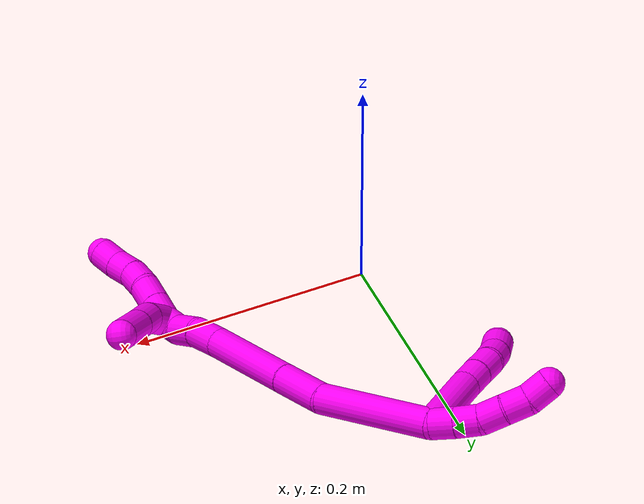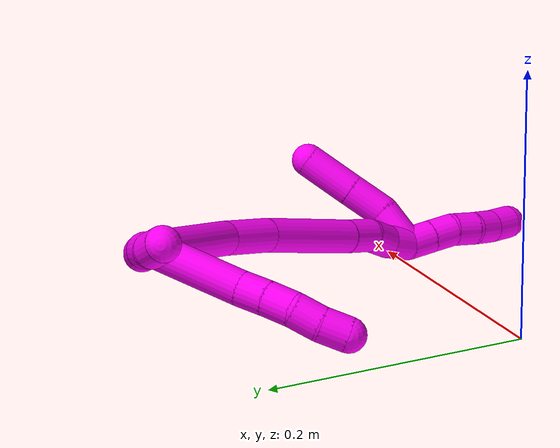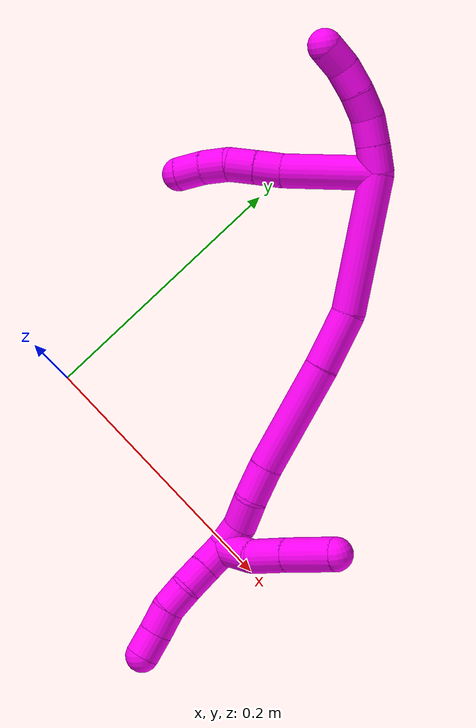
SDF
<sdf version="1.7">
 <world name="default">
  <model name="10">
   <static>0</static>
   <link name="10">
    <collision name="collision-cylinder-e_1_2_8">
     <pose>0.008841 -0.032764 0.005931 1.39172 0.259524 0.217132</pose>
     <geometry><cylinder><radius>0.0125</radius><length>0.068901</length></cylinder></geometry>
     <surface>
      <friction><ode><mu>1.16</mu><mu2>1.16</mu2><slip1>0</slip1><slip2>0</slip2></ode></friction>
      <contact><ode><kp>1e+06</kp><kd>1</kd><max_vel>0</max_vel><min_depth>0.001</min_depth></ode></contact>
     </surface>
    </collision>
    <visual name="visual-cylinder-e_1_2_8">
     <pose>0.008841 -0.032764 0.005931 1.39172 0.259524 0.217132</pose>
     <geometry><cylinder><radius>0.0125</radius><length>0.068901</length></cylinder></geometry>
     <material><ambient>1 0 0.964706 1</ambient></material>
    </visual>
    <collision name="collision-cylinder-e_2_8_9">
     <pose>0.020774 -0.07469 0.014665 1.27379 0.31221 0.231801</pose>
     <geometry><cylinder><radius>0.0125</radius><length>0.020135</length></cylinder></geometry>
     <surface>
      <friction><ode><mu>1.16</mu><mu2>1.16</mu2><slip1>0</slip1><slip2>0</slip2></ode></friction>
      <contact><ode><kp>1e+06</kp><kd>1</kd><max_vel>0</max_vel><min_depth>0.001</min_depth></ode></contact>
     </surface>
    </collision>
    <visual name="visual-cylinder-e_2_8_9">
     <pose>0.020774 -0.07469 0.014665 1.27379 0.31221 0.231801</pose>
     <geometry><cylinder><radius>0.0125</radius><length>0.020135</length></cylinder></geometry>
     <material><ambient>1 0 0.964706 1</ambient></material>
    </visual>
    <collision name="collision-cylinder-e_3_9_10">
     <pose>0.026668 -0.093406 0.020157 1.29662 0.275082 0.208946</pose>
     <geometry><cylinder><radius>0.0125</radius><length>0.020628</length></cylinder></geometry>
     <surface>
      <friction><ode><mu>1.16</mu><mu2>1.16</mu2><slip1>0</slip1><slip2>0</slip2></ode></friction>
      <contact><ode><kp>1e+06</kp><kd>1</kd><max_vel>0</max_vel><min_depth>0.001</min_depth></ode></contact>
     </surface>
    </collision>
    <visual name="visual-cylinder-e_3_9_10">
     <pose>0.026668 -0.093406 0.020157 1.29662 0.275082 0.208946</pose>
     <geometry><cylinder><radius>0.0125</radius><length>0.020628</length></cylinder></geometry>
     <material><ambient>1 0 0.964706 1</ambient></material>
    </visual>
    <collision name="collision-cylinder-e_4_10_11">
     <pose>0.031209 -0.112915 0.023067 1.54846 0.173062 0.169258</pose>
     <geometry><cylinder><radius>0.0125</radius><length>0.020212</length></cylinder></geometry>
     <surface>
      <friction><ode><mu>1.16</mu><mu2>1.16</mu2><slip1>0</slip1><slip2>0</slip2></ode></friction>
      <contact><ode><kp>1e+06</kp><kd>1</kd><max_vel>0</max_vel><min_depth>0.001</min_depth></ode></contact>
     </surface>
    </collision>
    <visual name="visual-cylinder-e_4_10_11">
     <pose>0.031209 -0.112915 0.023067 1.54846 0.173062 0.169258</pose>
     <geometry><cylinder><radius>0.0125</radius><length>0.020212</length></cylinder></geometry>
     <material><ambient>1 0 0.964706 1</ambient></material>
    </visual>
    <collision name="collision-cylinder-e_5_11_6">
     <pose>0.035822 -0.132464 0.022345 1.66888 0.289524 0.318931</pose>
     <geometry><cylinder><radius>0.0125</radius><length>0.020124</length></cylinder></geometry>
     <surface>
      <friction><ode><mu>1.16</mu><mu2>1.16</mu2><slip1>0</slip1><slip2>0</slip2></ode></friction>
      <contact><ode><kp>1e+06</kp><kd>1</kd><max_vel>0</max_vel><min_depth>0.001</min_depth></ode></contact>
     </surface>
    </collision>
    <visual name="visual-cylinder-e_5_11_6">
     <pose>0.035822 -0.132464 0.022345 1.66888 0.289524 0.318931</pose>
     <geometry><cylinder><radius>0.0125</radius><length>0.020124</length></cylinder></geometry>
     <material><ambient>1 0 0.964706 1</ambient></material>
    </visual>
    <collision name="collision-cylinder-e_1_2_12">
     <pose>-0.000716 -6.9e-05 0.009974 0.006872 -0.071629 -0.000246</pose>
     <geometry><cylinder><radius>0.0125</radius><length>0.02</length></cylinder></geometry>
     <surface>
      <friction><ode><mu>1.16</mu><mu2>1.16</mu2><slip1>0</slip1><slip2>0</slip2></ode></friction>
      <contact><ode><kp>1e+06</kp><kd>1</kd><max_vel>0</max_vel><min_depth>0.001</min_depth></ode></contact>
     </surface>
    </collision>
    <visual name="visual-cylinder-e_1_2_12">
     <pose>-0.000716 -6.9e-05 0.009974 0.006872 -0.071629 -0.000246</pose>
     <geometry><cylinder><radius>0.0125</radius><length>0.02</length></cylinder></geometry>
     <material><ambient>1 0 0.964706 1</ambient></material>
    </visual>
    <collision name="collision-cylinder-e_2_12_13">
     <pose>-0.001549 -0.000333 0.029946 0.019555 -0.011761 -0.000115</pose>
     <geometry><cylinder><radius>0.0125</radius><length>0.02</length></cylinder></geometry>
     <surface>
      <friction><ode><mu>1.16</mu><mu2>1.16</mu2><slip1>0</slip1><slip2>0</slip2></ode></friction>
      <contact><ode><kp>1e+06</kp><kd>1</kd><max_vel>0</max_vel><min_depth>0.001</min_depth></ode></contact>
     </surface>
    </collision>
    <visual name="visual-cylinder-e_2_12_13">
     <pose>-0.001549 -0.000333 0.029946 0.019555 -0.011761 -0.000115</pose>
     <geometry><cylinder><radius>0.0125</radius><length>0.02</length></cylinder></geometry>
     <material><ambient>1 0 0.964706 1</ambient></material>
    </visual>
    <collision name="collision-cylinder-e_3_13_14">
     <pose>0.000848 -0.001647 0.049557 0.115821 0.254136 0.014813</pose>
     <geometry><cylinder><radius>0.0125</radius><length>0.02</length></cylinder></geometry>
     <surface>
      <friction><ode><mu>1.16</mu><mu2>1.16</mu2><slip1>0</slip1><slip2>0</slip2></ode></friction>
      <contact><ode><kp>1e+06</kp><kd>1</kd><max_vel>0</max_vel><min_depth>0.001</min_depth></ode></contact>
     </surface>
    </collision>
    <visual name="visual-cylinder-e_3_13_14">
     <pose>0.000848 -0.001647 0.049557 0.115821 0.254136 0.014813</pose>
     <geometry><cylinder><radius>0.0125</radius><length>0.02</length></cylinder></geometry>
     <material><ambient>1 0 0.964706 1</ambient></material>
    </visual>
    <collision name="collision-cylinder-e_4_14_15">
     <pose>0.005727 -0.005248 0.068565 0.258358 0.238802 0.031167</pose>
     <geometry><cylinder><radius>0.0125</radius><length>0.02</length></cylinder></geometry>
     <surface>
      <friction><ode><mu>1.16</mu><mu2>1.16</mu2><slip1>0</slip1><slip2>0</slip2></ode></friction>
      <contact><ode><kp>1e+06</kp><kd>1</kd><max_vel>0</max_vel><min_depth>0.001</min_depth></ode></contact>
     </surface>
    </collision>
    <visual name="visual-cylinder-e_4_14_15">
     <pose>0.005727 -0.005248 0.068565 0.258358 0.238802 0.031167</pose>
     <geometry><cylinder><radius>0.0125</radius><length>0.02</length></cylinder></geometry>
     <material><ambient>1 0 0.964706 1</ambient></material>
    </visual>
    <collision name="collision-cylinder-e_5_15_5">
     <pose>0.012997 -0.010253 0.0863 0.293691 0.512593 0.077484</pose>
     <geometry><cylinder><radius>0.0125</radius><length>0.02</length></cylinder></geometry>
     <surface>
      <friction><ode><mu>1.16</mu><mu2>1.16</mu2><slip1>0</slip1><slip2>0</slip2></ode></friction>
      <contact><ode><kp>1e+06</kp><kd>1</kd><max_vel>0</max_vel><min_depth>0.001</min_depth></ode></contact>
     </surface>
    </collision>
    <visual name="visual-cylinder-e_5_15_5">
     <pose>0.012997 -0.010253 0.0863 0.293691 0.512593 0.077484</pose>
     <geometry><cylinder><radius>0.0125</radius><length>0.02</length></cylinder></geometry>
     <material><ambient>1 0 0.964706 1</ambient></material>
    </visual>
    <collision name="collision-cylinder-e_1_2_16">
     <pose>0.013548 -0.013927 -0.046999 2.85352 0.269644 1.50387</pose>
     <geometry><cylinder><radius>0.0125</radius><length>0.101713</length></cylinder></geometry>
     <surface>
      <friction><ode><mu>1.16</mu><mu2>1.16</mu2><slip1>0</slip1><slip2>0</slip2></ode></friction>
      <contact><ode><kp>1e+06</kp><kd>1</kd><max_vel>0</max_vel><min_depth>0.001</min_depth></ode></contact>
     </surface>
    </collision>
    <visual name="visual-cylinder-e_1_2_16">
     <pose>0.013548 -0.013927 -0.046999 2.85352 0.269644 1.50387</pose>
     <geometry><cylinder><radius>0.0125</radius><length>0.101713</length></cylinder></geometry>
     <material><ambient>1 0 0.964706 1</ambient></material>
    </visual>
    <collision name="collision-cylinder-e_2_16_17">
     <pose>0.035578 -0.037812 -0.111196 2.61672 0.403445 1.30136</pose>
     <geometry><cylinder><radius>0.0125</radius><length>0.043217</length></cylinder></geometry>
     <surface>
      <friction><ode><mu>1.16</mu><mu2>1.16</mu2><slip1>0</slip1><slip2>0</slip2></ode></friction>
      <contact><ode><kp>1e+06</kp><kd>1</kd><max_vel>0</max_vel><min_depth>0.001</min_depth></ode></contact>
     </surface>
    </collision>
    <visual name="visual-cylinder-e_2_16_17">
     <pose>0.035578 -0.037812 -0.111196 2.61672 0.403445 1.30136</pose>
     <geometry><cylinder><radius>0.0125</radius><length>0.043217</length></cylinder></geometry>
     <material><ambient>1 0 0.964706 1</ambient></material>
    </visual>
    <collision name="collision-cylinder-e_3_17_18">
     <pose>0.059223 -0.069535 -0.160708 2.54885 0.371122 1.10237</pose>
     <geometry><cylinder><radius>0.0125</radius><length>0.08361</length></cylinder></geometry>
     <surface>
      <friction><ode><mu>1.16</mu><mu2>1.16</mu2><slip1>0</slip1><slip2>0</slip2></ode></friction>
      <contact><ode><kp>1e+06</kp><kd>1</kd><max_vel>0</max_vel><min_depth>0.001</min_depth></ode></contact>
     </surface>
    </collision>
    <visual name="visual-cylinder-e_3_17_18">
     <pose>0.059223 -0.069535 -0.160708 2.54885 0.371122 1.10237</pose>
     <geometry><cylinder><radius>0.0125</radius><length>0.08361</length></cylinder></geometry>
     <material><ambient>1 0 0.964706 1</ambient></material>
    </visual>
    <collision name="collision-cylinder-e_4_18_19">
     <pose>0.079286 -0.097397 -0.203799 2.62675 0.376943 1.25397</pose>
     <geometry><cylinder><radius>0.0125</radius><length>0.026637</length></cylinder></geometry>
     <surface>
      <friction><ode><mu>1.16</mu><mu2>1.16</mu2><slip1>0</slip1><slip2>0</slip2></ode></friction>
      <contact><ode><kp>1e+06</kp><kd>1</kd><max_vel>0</max_vel><min_depth>0.001</min_depth></ode></contact>
     </surface>
    </collision>
    <visual name="visual-cylinder-e_4_18_19">
     <pose>0.079286 -0.097397 -0.203799 2.62675 0.376943 1.25397</pose>
     <geometry><cylinder><radius>0.0125</radius><length>0.026637</length></cylinder></geometry>
     <material><ambient>1 0 0.964706 1</ambient></material>
    </visual>
    <collision name="collision-cylinder-e_5_19_20">
     <pose>0.085626 -0.109655 -0.224546 2.58807 0.122045 0.423742</pose>
     <geometry><cylinder><radius>0.0125</radius><length>0.023613</length></cylinder></geometry>
     <surface>
      <friction><ode><mu>1.16</mu><mu2>1.16</mu2><slip1>0</slip1><slip2>0</slip2></ode></friction>
      <contact><ode><kp>1e+06</kp><kd>1</kd><max_vel>0</max_vel><min_depth>0.001</min_depth></ode></contact>
     </surface>
    </collision>
    <visual name="visual-cylinder-e_5_19_20">
     <pose>0.085626 -0.109655 -0.224546 2.58807 0.122045 0.423742</pose>
     <geometry><cylinder><radius>0.0125</radius><length>0.023613</length></cylinder></geometry>
     <material><ambient>1 0 0.964706 1</ambient></material>
    </visual>
    <collision name="collision-cylinder-e_6_20_1">
     <pose>0.090748 -0.122418 -0.24195 2.4154 0.354849 0.881898</pose>
     <geometry><cylinder><radius>0.0125</radius><length>0.021209</length></cylinder></geometry>
     <surface>
      <friction><ode><mu>1.16</mu><mu2>1.16</mu2><slip1>0</slip1><slip2>0</slip2></ode></friction>
      <contact><ode><kp>1e+06</kp><kd>1</kd><max_vel>0</max_vel><min_depth>0.001</min_depth></ode></contact>
     </surface>
    </collision>
    <visual name="visual-cylinder-e_6_20_1">
     <pose>0.090748 -0.122418 -0.24195 2.4154 0.354849 0.881898</pose>
     <geometry><cylinder><radius>0.0125</radius><length>0.021209</length></cylinder></geometry>
     <material><ambient>1 0 0.964706 1</ambient></material>
    </visual>
    <collision name="collision-cylinder-e_1_1_21">
     <pose>0.101528 -0.133956 -0.254416 2.36581 0.788818 1.58929</pose>
     <geometry><cylinder><radius>0.0125</radius><length>0.02</length></cylinder></geometry>
     <surface>
      <friction><ode><mu>1.16</mu><mu2>1.16</mu2><slip1>0</slip1><slip2>0</slip2></ode></friction>
      <contact><ode><kp>1e+06</kp><kd>1</kd><max_vel>0</max_vel><min_depth>0.001</min_depth></ode></contact>
     </surface>
    </collision>
    <visual name="visual-cylinder-e_1_1_21">
     <pose>0.101528 -0.133956 -0.254416 2.36581 0.788818 1.58929</pose>
     <geometry><cylinder><radius>0.0125</radius><length>0.02</length></cylinder></geometry>
     <material><ambient>1 0 0.964706 1</ambient></material>
    </visual>
    <collision name="collision-cylinder-e_2_21_22">
     <pose>0.11565 -0.143845 -0.264552 2.3712 0.779214 1.58341</pose>
     <geometry><cylinder><radius>0.0125</radius><length>0.02</length></cylinder></geometry>
     <surface>
      <friction><ode><mu>1.16</mu><mu2>1.16</mu2><slip1>0</slip1><slip2>0</slip2></ode></friction>
      <contact><ode><kp>1e+06</kp><kd>1</kd><max_vel>0</max_vel><min_depth>0.001</min_depth></ode></contact>
     </surface>
    </collision>
    <visual name="visual-cylinder-e_2_21_22">
     <pose>0.11565 -0.143845 -0.264552 2.3712 0.779214 1.58341</pose>
     <geometry><cylinder><radius>0.0125</radius><length>0.02</length></cylinder></geometry>
     <material><ambient>1 0 0.964706 1</ambient></material>
    </visual>
    <collision name="collision-cylinder-e_3_22_23">
     <pose>0.127795 -0.154803 -0.275805 2.36802 0.537239 1.18865</pose>
     <geometry><cylinder><radius>0.0125</radius><length>0.02</length></cylinder></geometry>
     <surface>
      <friction><ode><mu>1.16</mu><mu2>1.16</mu2><slip1>0</slip1><slip2>0</slip2></ode></friction>
      <contact><ode><kp>1e+06</kp><kd>1</kd><max_vel>0</max_vel><min_depth>0.001</min_depth></ode></contact>
     </surface>
    </collision>
    <visual name="visual-cylinder-e_3_22_23">
     <pose>0.127795 -0.154803 -0.275805 2.36802 0.537239 1.18865</pose>
     <geometry><cylinder><radius>0.0125</radius><length>0.02</length></cylinder></geometry>
     <material><ambient>1 0 0.964706 1</ambient></material>
    </visual>
    <collision name="collision-cylinder-e_4_23_24">
     <pose>0.137204 -0.165404 -0.289725 2.60737 0.443491 1.37827</pose>
     <geometry><cylinder><radius>0.0125</radius><length>0.02</length></cylinder></geometry>
     <surface>
      <friction><ode><mu>1.16</mu><mu2>1.16</mu2><slip1>0</slip1><slip2>0</slip2></ode></friction>
      <contact><ode><kp>1e+06</kp><kd>1</kd><max_vel>0</max_vel><min_depth>0.001</min_depth></ode></contact>
     </surface>
    </collision>
    <visual name="visual-cylinder-e_4_23_24">
     <pose>0.137204 -0.165404 -0.289725 2.60737 0.443491 1.37827</pose>
     <geometry><cylinder><radius>0.0125</radius><length>0.02</length></cylinder></geometry>
     <material><ambient>1 0 0.964706 1</ambient></material>
    </visual>
    <collision name="collision-cylinder-e_5_24_4">
     <pose>0.146802 -0.174285 -0.304814 2.61209 0.559435 1.62857</pose>
     <geometry><cylinder><radius>0.0125</radius><length>0.02</length></cylinder></geometry>
     <surface>
      <friction><ode><mu>1.16</mu><mu2>1.16</mu2><slip1>0</slip1><slip2>0</slip2></ode></friction>
      <contact><ode><kp>1e+06</kp><kd>1</kd><max_vel>0</max_vel><min_depth>0.001</min_depth></ode></contact>
     </surface>
    </collision>
    <visual name="visual-cylinder-e_5_24_4">
     <pose>0.146802 -0.174285 -0.304814 2.61209 0.559435 1.62857</pose>
     <geometry><cylinder><radius>0.0125</radius><length>0.02</length></cylinder></geometry>
     <material><ambient>1 0 0.964706 1</ambient></material>
    </visual>
    <collision name="collision-cylinder-e_1_1_25">
     <pose>0.098198 -0.114054 -0.250936 -1.67402 0.245198 -0.271599</pose>
     <geometry><cylinder><radius>0.0125</radius><length>0.031022</length></cylinder></geometry>
     <surface>
      <friction><ode><mu>1.16</mu><mu2>1.16</mu2><slip1>0</slip1><slip2>0</slip2></ode></friction>
      <contact><ode><kp>1e+06</kp><kd>1</kd><max_vel>0</max_vel><min_depth>0.001</min_depth></ode></contact>
     </surface>
    </collision>
    <visual name="visual-cylinder-e_1_1_25">
     <pose>0.098198 -0.114054 -0.250936 -1.67402 0.245198 -0.271599</pose>
     <geometry><cylinder><radius>0.0125</radius><length>0.031022</length></cylinder></geometry>
     <material><ambient>1 0 0.964706 1</ambient></material>
    </visual>
    <collision name="collision-cylinder-e_2_25_26">
     <pose>0.101103 -0.084537 -0.251943 -1.53344 -0.058986 0.056823</pose>
     <geometry><cylinder><radius>0.0125</radius><length>0.02917</length></cylinder></geometry>
     <surface>
      <friction><ode><mu>1.16</mu><mu2>1.16</mu2><slip1>0</slip1><slip2>0</slip2></ode></friction>
      <contact><ode><kp>1e+06</kp><kd>1</kd><max_vel>0</max_vel><min_depth>0.001</min_depth></ode></contact>
     </surface>
    </collision>
    <visual name="visual-cylinder-e_2_25_26">
     <pose>0.101103 -0.084537 -0.251943 -1.53344 -0.058986 0.056823</pose>
     <geometry><cylinder><radius>0.0125</radius><length>0.02917</length></cylinder></geometry>
     <material><ambient>1 0 0.964706 1</ambient></material>
    </visual>
    <collision name="collision-cylinder-e_3_26_3">
     <pose>0.099267 -0.05011 -0.251125 -1.55703 -0.049075 0.048404</pose>
     <geometry><cylinder><radius>0.0125</radius><length>0.039807</length></cylinder></geometry>
     <surface>
      <friction><ode><mu>1.16</mu><mu2>1.16</mu2><slip1>0</slip1><slip2>0</slip2></ode></friction>
      <contact><ode><kp>1e+06</kp><kd>1</kd><max_vel>0</max_vel><min_depth>0.001</min_depth></ode></contact>
     </surface>
    </collision>
    <visual name="visual-cylinder-e_3_26_3">
     <pose>0.099267 -0.05011 -0.251125 -1.55703 -0.049075 0.048404</pose>
     <geometry><cylinder><radius>0.0125</radius><length>0.039807</length></cylinder></geometry>
     <material><ambient>1 0 0.964706 1</ambient></material>
    </visual>
    <collision name="collision-sphere-3">
     <pose>0.098291 -0.030232 -0.250851 0 -0 0</pose>
     <geometry><sphere><radius>0.0125</radius></sphere></geometry>
     <surface>
      <friction><ode><mu>1.16</mu><mu2>1.16</mu2><slip1>0</slip1><slip2>0</slip2></ode></friction>
      <contact><ode><kp>1e+06</kp><kd>1</kd><max_vel>0</max_vel><min_depth>0.001</min_depth></ode></contact>
     </surface>
    </collision>
    <visual name="visual-sphere-3">
     <pose>0.098291 -0.030232 -0.250851 0 -0 0</pose>
     <geometry><sphere><radius>0.0125</radius></sphere></geometry>
     <material><ambient>1 0 0.964706 1</ambient></material>
    </visual>
    <collision name="collision-sphere-26">
     <pose>0.100243 -0.069987 -0.251399 0 -0 0</pose>
     <geometry><sphere><radius>0.0125</radius></sphere></geometry>
     <surface>
      <friction><ode><mu>1.16</mu><mu2>1.16</mu2><slip1>0</slip1><slip2>0</slip2></ode></friction>
      <contact><ode><kp>1e+06</kp><kd>1</kd><max_vel>0</max_vel><min_depth>0.001</min_depth></ode></contact>
     </surface>
    </collision>
    <visual name="visual-sphere-26">
     <pose>0.100243 -0.069987 -0.251399 0 -0 0</pose>
     <geometry><sphere><radius>0.0125</radius></sphere></geometry>
     <material><ambient>1 0 0.964706 1</ambient></material>
    </visual>
    <collision name="collision-sphere-25">
     <pose>0.101963 -0.099087 -0.252487 0 -0 0</pose>
     <geometry><sphere><radius>0.0125</radius></sphere></geometry>
     <surface>
      <friction><ode><mu>1.16</mu><mu2>1.16</mu2><slip1>0</slip1><slip2>0</slip2></ode></friction>
      <contact><ode><kp>1e+06</kp><kd>1</kd><max_vel>0</max_vel><min_depth>0.001</min_depth></ode></contact>
     </surface>
    </collision>
    <visual name="visual-sphere-25">
     <pose>0.101963 -0.099087 -0.252487 0 -0 0</pose>
     <geometry><sphere><radius>0.0125</radius></sphere></geometry>
     <material><ambient>1 0 0.964706 1</ambient></material>
    </visual>
    <collision name="collision-sphere-4">
     <pose>0.152109 -0.178566 -0.312129 0 -0 0</pose>
     <geometry><sphere><radius>0.0125</radius></sphere></geometry>
     <surface>
      <friction><ode><mu>1.16</mu><mu2>1.16</mu2><slip1>0</slip1><slip2>0</slip2></ode></friction>
      <contact><ode><kp>1e+06</kp><kd>1</kd><max_vel>0</max_vel><min_depth>0.001</min_depth></ode></contact>
     </surface>
    </collision>
    <visual name="visual-sphere-4">
     <pose>0.152109 -0.178566 -0.312129 0 -0 0</pose>
     <geometry><sphere><radius>0.0125</radius></sphere></geometry>
     <material><ambient>1 0 0.964706 1</ambient></material>
    </visual>
    <collision name="collision-sphere-24">
     <pose>0.141494 -0.170004 -0.297499 0 -0 0</pose>
     <geometry><sphere><radius>0.0125</radius></sphere></geometry>
     <surface>
      <friction><ode><mu>1.16</mu><mu2>1.16</mu2><slip1>0</slip1><slip2>0</slip2></ode></friction>
      <contact><ode><kp>1e+06</kp><kd>1</kd><max_vel>0</max_vel><min_depth>0.001</min_depth></ode></contact>
     </surface>
    </collision>
    <visual name="visual-sphere-24">
     <pose>0.141494 -0.170004 -0.297499 0 -0 0</pose>
     <geometry><sphere><radius>0.0125</radius></sphere></geometry>
     <material><ambient>1 0 0.964706 1</ambient></material>
    </visual>
    <collision name="collision-sphere-23">
     <pose>0.132913 -0.160805 -0.281951 0 -0 0</pose>
     <geometry><sphere><radius>0.0125</radius></sphere></geometry>
     <surface>
      <friction><ode><mu>1.16</mu><mu2>1.16</mu2><slip1>0</slip1><slip2>0</slip2></ode></friction>
      <contact><ode><kp>1e+06</kp><kd>1</kd><max_vel>0</max_vel><min_depth>0.001</min_depth></ode></contact>
     </surface>
    </collision>
    <visual name="visual-sphere-23">
     <pose>0.132913 -0.160805 -0.281951 0 -0 0</pose>
     <geometry><sphere><radius>0.0125</radius></sphere></geometry>
     <material><ambient>1 0 0.964706 1</ambient></material>
    </visual>
    <collision name="collision-sphere-22">
     <pose>0.122677 -0.1488 -0.269658 0 -0 0</pose>
     <geometry><sphere><radius>0.0125</radius></sphere></geometry>
     <surface>
      <friction><ode><mu>1.16</mu><mu2>1.16</mu2><slip1>0</slip1><slip2>0</slip2></ode></friction>
      <contact><ode><kp>1e+06</kp><kd>1</kd><max_vel>0</max_vel><min_depth>0.001</min_depth></ode></contact>
     </surface>
    </collision>
    <visual name="visual-sphere-22">
     <pose>0.122677 -0.1488 -0.269658 0 -0 0</pose>
     <geometry><sphere><radius>0.0125</radius></sphere></geometry>
     <material><ambient>1 0 0.964706 1</ambient></material>
    </visual>
    <collision name="collision-sphere-21">
     <pose>0.108623 -0.13889 -0.259447 0 -0 0</pose>
     <geometry><sphere><radius>0.0125</radius></sphere></geometry>
     <surface>
      <friction><ode><mu>1.16</mu><mu2>1.16</mu2><slip1>0</slip1><slip2>0</slip2></ode></friction>
      <contact><ode><kp>1e+06</kp><kd>1</kd><max_vel>0</max_vel><min_depth>0.001</min_depth></ode></contact>
     </surface>
    </collision>
    <visual name="visual-sphere-21">
     <pose>0.108623 -0.13889 -0.259447 0 -0 0</pose>
     <geometry><sphere><radius>0.0125</radius></sphere></geometry>
     <material><ambient>1 0 0.964706 1</ambient></material>
    </visual>
    <collision name="collision-sphere-1">
     <pose>0.094432 -0.129021 -0.249386 0 -0 0</pose>
     <geometry><sphere><radius>0.0125</radius></sphere></geometry>
     <surface>
      <friction><ode><mu>1.16</mu><mu2>1.16</mu2><slip1>0</slip1><slip2>0</slip2></ode></friction>
      <contact><ode><kp>1e+06</kp><kd>1</kd><max_vel>0</max_vel><min_depth>0.001</min_depth></ode></contact>
     </surface>
    </collision>
    <visual name="visual-sphere-1">
     <pose>0.094432 -0.129021 -0.249386 0 -0 0</pose>
     <geometry><sphere><radius>0.0125</radius></sphere></geometry>
     <material><ambient>1 0 0.964706 1</ambient></material>
    </visual>
    <collision name="collision-sphere-6">
     <pose>0.038695 -0.142061 0.0214 0 -0 0</pose>
     <geometry><sphere><radius>0.0125</radius></sphere></geometry>
     <surface>
      <friction><ode><mu>1.16</mu><mu2>1.16</mu2><slip1>0</slip1><slip2>0</slip2></ode></friction>
      <contact><ode><kp>1e+06</kp><kd>1</kd><max_vel>0</max_vel><min_depth>0.001</min_depth></ode></contact>
     </surface>
    </collision>
    <visual name="visual-sphere-6">
     <pose>0.038695 -0.142061 0.0214 0 -0 0</pose>
     <geometry><sphere><radius>0.0125</radius></sphere></geometry>
     <material><ambient>1 0 0.964706 1</ambient></material>
    </visual>
    <collision name="collision-sphere-11">
     <pose>0.03295 -0.122867 0.023289 0 -0 0</pose>
     <geometry><sphere><radius>0.0125</radius></sphere></geometry>
     <surface>
      <friction><ode><mu>1.16</mu><mu2>1.16</mu2><slip1>0</slip1><slip2>0</slip2></ode></friction>
      <contact><ode><kp>1e+06</kp><kd>1</kd><max_vel>0</max_vel><min_depth>0.001</min_depth></ode></contact>
     </surface>
    </collision>
    <visual name="visual-sphere-11">
     <pose>0.03295 -0.122867 0.023289 0 -0 0</pose>
     <geometry><sphere><radius>0.0125</radius></sphere></geometry>
     <material><ambient>1 0 0.964706 1</ambient></material>
    </visual>
    <collision name="collision-sphere-10">
     <pose>0.029469 -0.102962 0.022844 0 -0 0</pose>
     <geometry><sphere><radius>0.0125</radius></sphere></geometry>
     <surface>
      <friction><ode><mu>1.16</mu><mu2>1.16</mu2><slip1>0</slip1><slip2>0</slip2></ode></friction>
      <contact><ode><kp>1e+06</kp><kd>1</kd><max_vel>0</max_vel><min_depth>0.001</min_depth></ode></contact>
     </surface>
    </collision>
    <visual name="visual-sphere-10">
     <pose>0.029469 -0.102962 0.022844 0 -0 0</pose>
     <geometry><sphere><radius>0.0125</radius></sphere></geometry>
     <material><ambient>1 0 0.964706 1</ambient></material>
    </visual>
    <collision name="collision-sphere-9">
     <pose>0.023866 -0.083851 0.017469 0 -0 0</pose>
     <geometry><sphere><radius>0.0125</radius></sphere></geometry>
     <surface>
      <friction><ode><mu>1.16</mu><mu2>1.16</mu2><slip1>0</slip1><slip2>0</slip2></ode></friction>
      <contact><ode><kp>1e+06</kp><kd>1</kd><max_vel>0</max_vel><min_depth>0.001</min_depth></ode></contact>
     </surface>
    </collision>
    <visual name="visual-sphere-9">
     <pose>0.023866 -0.083851 0.017469 0 -0 0</pose>
     <geometry><sphere><radius>0.0125</radius></sphere></geometry>
     <material><ambient>1 0 0.964706 1</ambient></material>
    </visual>
    <collision name="collision-sphere-2">
     <geometry><sphere><radius>0.0125</radius></sphere></geometry>
     <surface>
      <friction><ode><mu>1.16</mu><mu2>1.16</mu2><slip1>0</slip1><slip2>0</slip2></ode></friction>
      <contact><ode><kp>1e+06</kp><kd>1</kd><max_vel>0</max_vel><min_depth>0.001</min_depth></ode></contact>
     </surface>
    </collision>
    <visual name="visual-sphere-2">
     <geometry><sphere><radius>0.0125</radius></sphere></geometry>
     <material><ambient>1 0 0.964706 1</ambient></material>
    </visual>
    <collision name="collision-sphere-19">
     <pose>0.084189 -0.103494 -0.214577 0 -0 0</pose>
     <geometry><sphere><radius>0.0125</radius></sphere></geometry>
     <surface>
      <friction><ode><mu>1.16</mu><mu2>1.16</mu2><slip1>0</slip1><slip2>0</slip2></ode></friction>
      <contact><ode><kp>1e+06</kp><kd>1</kd><max_vel>0</max_vel><min_depth>0.001</min_depth></ode></contact>
     </surface>
    </collision>
    <visual name="visual-sphere-19">
     <pose>0.084189 -0.103494 -0.214577 0 -0 0</pose>
     <geometry><sphere><radius>0.0125</radius></sphere></geometry>
     <material><ambient>1 0 0.964706 1</ambient></material>
    </visual>
    <collision name="collision-sphere-8">
     <pose>0.017681 -0.065529 0.011861 0 -0 0</pose>
     <geometry><sphere><radius>0.0125</radius></sphere></geometry>
     <surface>
      <friction><ode><mu>1.16</mu><mu2>1.16</mu2><slip1>0</slip1><slip2>0</slip2></ode></friction>
      <contact><ode><kp>1e+06</kp><kd>1</kd><max_vel>0</max_vel><min_depth>0.001</min_depth></ode></contact>
     </surface>
    </collision>
    <visual name="visual-sphere-8">
     <pose>0.017681 -0.065529 0.011861 0 -0 0</pose>
     <geometry><sphere><radius>0.0125</radius></sphere></geometry>
     <material><ambient>1 0 0.964706 1</ambient></material>
    </visual>
    <collision name="collision-sphere-12">
     <pose>-0.001431 -0.000137 0.019948 0 -0 0</pose>
     <geometry><sphere><radius>0.0125</radius></sphere></geometry>
     <surface>
      <friction><ode><mu>1.16</mu><mu2>1.16</mu2><slip1>0</slip1><slip2>0</slip2></ode></friction>
      <contact><ode><kp>1e+06</kp><kd>1</kd><max_vel>0</max_vel><min_depth>0.001</min_depth></ode></contact>
     </surface>
    </collision>
    <visual name="visual-sphere-12">
     <pose>-0.001431 -0.000137 0.019948 0 -0 0</pose>
     <geometry><sphere><radius>0.0125</radius></sphere></geometry>
     <material><ambient>1 0 0.964706 1</ambient></material>
    </visual>
    <collision name="collision-sphere-13">
     <pose>-0.001667 -0.000528 0.039943 0 -0 0</pose>
     <geometry><sphere><radius>0.0125</radius></sphere></geometry>
     <surface>
      <friction><ode><mu>1.16</mu><mu2>1.16</mu2><slip1>0</slip1><slip2>0</slip2></ode></friction>
      <contact><ode><kp>1e+06</kp><kd>1</kd><max_vel>0</max_vel><min_depth>0.001</min_depth></ode></contact>
     </surface>
    </collision>
    <visual name="visual-sphere-13">
     <pose>-0.001667 -0.000528 0.039943 0 -0 0</pose>
     <geometry><sphere><radius>0.0125</radius></sphere></geometry>
     <material><ambient>1 0 0.964706 1</ambient></material>
    </visual>
    <collision name="collision-sphere-14">
     <pose>0.003362 -0.002765 0.059171 0 -0 0</pose>
     <geometry><sphere><radius>0.0125</radius></sphere></geometry>
     <surface>
      <friction><ode><mu>1.16</mu><mu2>1.16</mu2><slip1>0</slip1><slip2>0</slip2></ode></friction>
      <contact><ode><kp>1e+06</kp><kd>1</kd><max_vel>0</max_vel><min_depth>0.001</min_depth></ode></contact>
     </surface>
    </collision>
    <visual name="visual-sphere-14">
     <pose>0.003362 -0.002765 0.059171 0 -0 0</pose>
     <geometry><sphere><radius>0.0125</radius></sphere></geometry>
     <material><ambient>1 0 0.964706 1</ambient></material>
    </visual>
    <collision name="collision-sphere-15">
     <pose>0.008092 -0.00773 0.077958 0 -0 0</pose>
     <geometry><sphere><radius>0.0125</radius></sphere></geometry>
     <surface>
      <friction><ode><mu>1.16</mu><mu2>1.16</mu2><slip1>0</slip1><slip2>0</slip2></ode></friction>
      <contact><ode><kp>1e+06</kp><kd>1</kd><max_vel>0</max_vel><min_depth>0.001</min_depth></ode></contact>
     </surface>
    </collision>
    <visual name="visual-sphere-15">
     <pose>0.008092 -0.00773 0.077958 0 -0 0</pose>
     <geometry><sphere><radius>0.0125</radius></sphere></geometry>
     <material><ambient>1 0 0.964706 1</ambient></material>
    </visual>
    <collision name="collision-sphere-5">
     <pose>0.017901 -0.012776 0.094642 0 -0 0</pose>
     <geometry><sphere><radius>0.0125</radius></sphere></geometry>
     <surface>
      <friction><ode><mu>1.16</mu><mu2>1.16</mu2><slip1>0</slip1><slip2>0</slip2></ode></friction>
      <contact><ode><kp>1e+06</kp><kd>1</kd><max_vel>0</max_vel><min_depth>0.001</min_depth></ode></contact>
     </surface>
    </collision>
    <visual name="visual-sphere-5">
     <pose>0.017901 -0.012776 0.094642 0 -0 0</pose>
     <geometry><sphere><radius>0.0125</radius></sphere></geometry>
     <material><ambient>1 0 0.964706 1</ambient></material>
    </visual>
    <collision name="collision-sphere-16">
     <pose>0.027095 -0.027853 -0.093998 0 -0 0</pose>
     <geometry><sphere><radius>0.0125</radius></sphere></geometry>
     <surface>
      <friction><ode><mu>1.16</mu><mu2>1.16</mu2><slip1>0</slip1><slip2>0</slip2></ode></friction>
      <contact><ode><kp>1e+06</kp><kd>1</kd><max_vel>0</max_vel><min_depth>0.001</min_depth></ode></contact>
     </surface>
    </collision>
    <visual name="visual-sphere-16">
     <pose>0.027095 -0.027853 -0.093998 0 -0 0</pose>
     <geometry><sphere><radius>0.0125</radius></sphere></geometry>
     <material><ambient>1 0 0.964706 1</ambient></material>
    </visual>
    <collision name="collision-sphere-17">
     <pose>0.044062 -0.047771 -0.128395 0 -0 0</pose>
     <geometry><sphere><radius>0.0125</radius></sphere></geometry>
     <surface>
      <friction><ode><mu>1.16</mu><mu2>1.16</mu2><slip1>0</slip1><slip2>0</slip2></ode></friction>
      <contact><ode><kp>1e+06</kp><kd>1</kd><max_vel>0</max_vel><min_depth>0.001</min_depth></ode></contact>
     </surface>
    </collision>
    <visual name="visual-sphere-17">
     <pose>0.044062 -0.047771 -0.128395 0 -0 0</pose>
     <geometry><sphere><radius>0.0125</radius></sphere></geometry>
     <material><ambient>1 0 0.964706 1</ambient></material>
    </visual>
    <collision name="collision-sphere-18">
     <pose>0.074384 -0.091299 -0.193021 0 -0 0</pose>
     <geometry><sphere><radius>0.0125</radius></sphere></geometry>
     <surface>
      <friction><ode><mu>1.16</mu><mu2>1.16</mu2><slip1>0</slip1><slip2>0</slip2></ode></friction>
      <contact><ode><kp>1e+06</kp><kd>1</kd><max_vel>0</max_vel><min_depth>0.001</min_depth></ode></contact>
     </surface>
    </collision>
    <visual name="visual-sphere-18">
     <pose>0.074384 -0.091299 -0.193021 0 -0 0</pose>
     <geometry><sphere><radius>0.0125</radius></sphere></geometry>
     <material><ambient>1 0 0.964706 1</ambient></material>
    </visual>
    <collision name="collision-sphere-20">
     <pose>0.087063 -0.115815 -0.234515 0 -0 0</pose>
     <geometry><sphere><radius>0.0125</radius></sphere></geometry>
     <surface>
      <friction><ode><mu>1.16</mu><mu2>1.16</mu2><slip1>0</slip1><slip2>0</slip2></ode></friction>
      <contact><ode><kp>1e+06</kp><kd>1</kd><max_vel>0</max_vel><min_depth>0.001</min_depth></ode></contact>
     </surface>
    </collision>
    <visual name="visual-sphere-20">
     <pose>0.087063 -0.115815 -0.234515 0 -0 0</pose>
     <geometry><sphere><radius>0.0125</radius></sphere></geometry>
     <material><ambient>1 0 0.964706 1</ambient></material>
    </visual>
    <inertial>
     <pose>0.05297 -0.068102 -0.113173 0 -0 0</pose>
     <mass>0.75</mass>
     <inertia><ixx>0.000261</ixx><ixy>0</ixy><ixz>0</ixz><iyy>0.000143</iyy><iyz>0</iyz><izz>5e-06</izz></inertia>
    </inertial>
   </link>
   <pose>0.058818 0.258794 0.093404 1.05482 -0.872412 -1.72278</pose>
  </model>
 </world>
</sdf>
